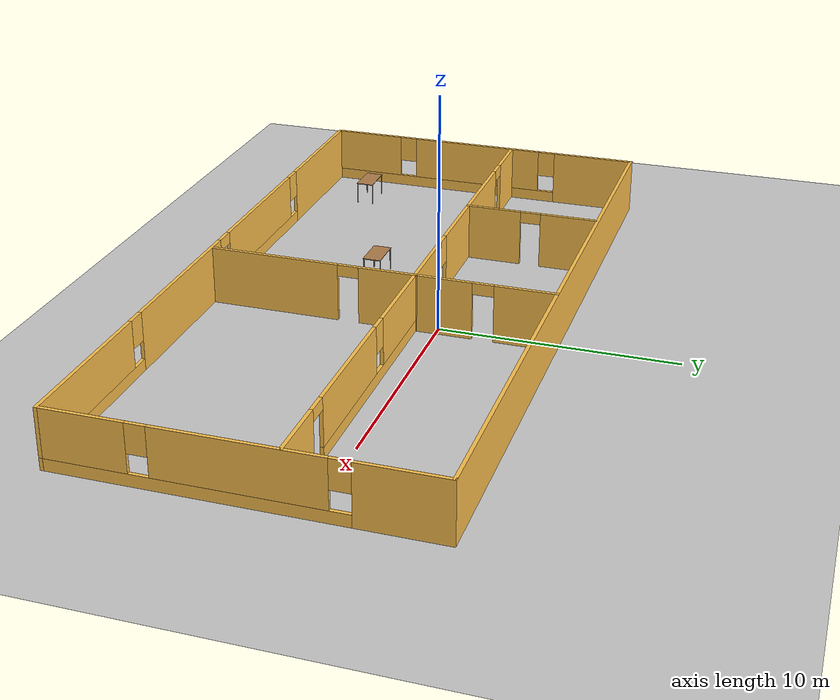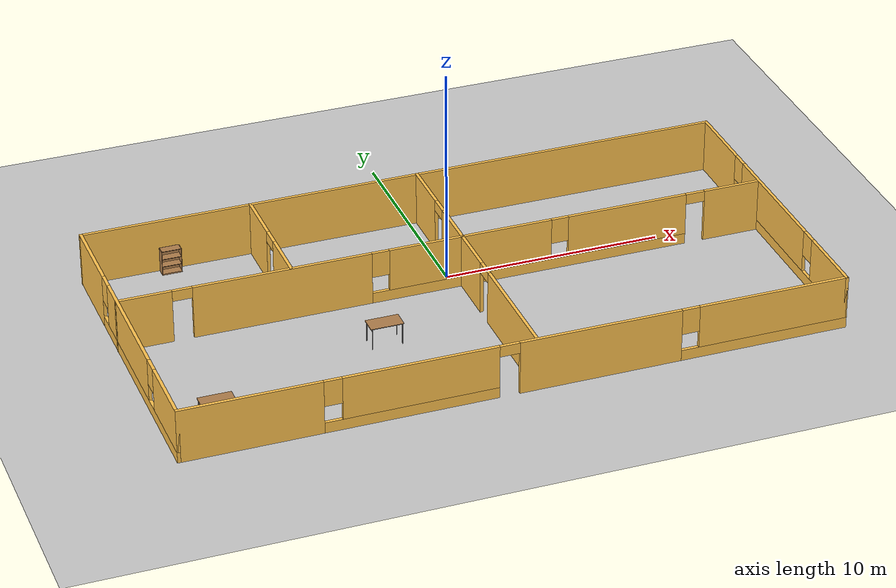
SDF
<sdf version="1.6">
 <world name="default">
  <model name="ground_plane">
   <static>1</static>
   <link name="link">
    <collision name="collision">
     <geometry><plane><normal>0 0 1</normal><size>100 100</size></plane></geometry>
     <surface><friction><ode><mu>100</mu><mu2>50</mu2></ode></friction></surface>
    </collision>
    <visual name="visual">
     <cast_shadows>0</cast_shadows>
     <geometry><plane><normal>0 0 1</normal><size>100 100</size></plane></geometry>
     <material>
      <script><uri>file://media/materials/scripts/gazebo.material</uri><name>Gazebo/Grey</name></script>
     </material>
    </visual>
   </link>
  </model>
  <model name="Building">
   <pose>-0.2996 -2.436 0 0 -0 0</pose>
   <link name="Wall_1">
    <pose>-14.92 0 0 0 0 -1.5708</pose>
    <visual name="Wall_1_Visual_0">
     <pose>-5.60194 0 1.25 0 -0 0</pose>
     <geometry><box><size>3.79611 0.15 2.5</size></box></geometry>
     <material>
      <script><uri>file://media/materials/scripts/gazebo.material</uri><name>Gazebo/Grey</name></script>
      <ambient>1 0.764706 0.305882 1</ambient>
     </material>
     <meta><layer>0</layer></meta>
    </visual>
    <collision name="Wall_1_Collision_0">
     <geometry><box><size>3.79611 0.15 2.5</size></box></geometry>
     <pose>-5.60194 0 1.25 0 -0 0</pose>
    </collision>
    <visual name="Wall_1_Visual_1">
     <pose>1.89806 0 0.25 0 -0 0</pose>
     <geometry><box><size>11.2039 0.15 0.5</size></box></geometry>
     <material>
      <script><uri>file://media/materials/scripts/gazebo.material</uri><name>Gazebo/Grey</name></script>
      <ambient>1 0.764706 0.305882 1</ambient>
     </material>
     <meta><layer>0</layer></meta>
    </visual>
    <collision name="Wall_1_Collision_1">
     <geometry><box><size>11.2039 0.15 0.5</size></box></geometry>
     <pose>1.89806 0 0.25 0 -0 0</pose>
    </collision>
    <visual name="Wall_1_Visual_2">
     <pose>0.228614 0 1.5 0 -0 0</pose>
     <geometry><box><size>6.265 0.15 2</size></box></geometry>
     <material>
      <script><uri>file://media/materials/scripts/gazebo.material</uri><name>Gazebo/Grey</name></script>
      <ambient>1 0.764706 0.305882 1</ambient>
     </material>
     <meta><layer>0</layer></meta>
    </visual>
    <collision name="Wall_1_Collision_2">
     <geometry><box><size>6.265 0.15 2</size></box></geometry>
     <pose>0.228614 0 1.5 0 -0 0</pose>
    </collision>
    <visual name="Wall_1_Visual_3">
     <pose>5.83056 0 1.5 0 -0 0</pose>
     <geometry><box><size>3.33888 0.15 2</size></box></geometry>
     <material>
      <script><uri>file://media/materials/scripts/gazebo.material</uri><name>Gazebo/Grey</name></script>
      <ambient>1 0.764706 0.305882 1</ambient>
     </material>
     <meta><layer>0</layer></meta>
    </visual>
    <collision name="Wall_1_Collision_3">
     <geometry><box><size>3.33888 0.15 2</size></box></geometry>
     <pose>5.83056 0 1.5 0 -0 0</pose>
    </collision>
    <visual name="Wall_1_Visual_4">
     <pose>-3.30389 0 1.9 0 -0 0</pose>
     <geometry><box><size>0.8 0.15 1.2</size></box></geometry>
     <material>
      <script><uri>file://media/materials/scripts/gazebo.material</uri><name>Gazebo/Grey</name></script>
      <ambient>1 0.764706 0.305882 1</ambient>
     </material>
     <meta><layer>0</layer></meta>
    </visual>
    <collision name="Wall_1_Collision_4">
     <geometry><box><size>0.8 0.15 1.2</size></box></geometry>
     <pose>-3.30389 0 1.9 0 -0 0</pose>
    </collision>
    <visual name="Wall_1_Visual_5">
     <pose>3.76112 0 1.9 0 -0 0</pose>
     <geometry><box><size>0.8 0.15 1.2</size></box></geometry>
     <material>
      <script><uri>file://media/materials/scripts/gazebo.material</uri><name>Gazebo/Grey</name></script>
      <ambient>1 0.764706 0.305882 1</ambient>
     </material>
     <meta><layer>0</layer></meta>
    </visual>
    <collision name="Wall_1_Collision_5">
     <geometry><box><size>0.8 0.15 1.2</size></box></geometry>
     <pose>3.76112 0 1.9 0 -0 0</pose>
    </collision>
   </link>
   <link name="Wall_12">
    <pose>-7.157 4.5 0 0 0 -1.5708</pose>
    <visual name="Wall_12_Visual_0">
     <pose>-1.68316 0 1.25 0 -0 0</pose>
     <geometry><box><size>2.63367 0.15 2.5</size></box></geometry>
     <material>
      <script><uri>file://media/materials/scripts/gazebo.material</uri><name>Gazebo/Grey</name></script>
      <ambient>1 0.764706 0.305882 1</ambient>
     </material>
     <meta><layer>0</layer></meta>
    </visual>
    <collision name="Wall_12_Collision_0">
     <geometry><box><size>2.63367 0.15 2.5</size></box></geometry>
     <pose>-1.68316 0 1.25 0 -0 0</pose>
    </collision>
    <visual name="Wall_12_Visual_1">
     <pose>1.76684 0 1.25 0 -0 0</pose>
     <geometry><box><size>2.46633 0.15 2.5</size></box></geometry>
     <material>
      <script><uri>file://media/materials/scripts/gazebo.material</uri><name>Gazebo/Grey</name></script>
      <ambient>1 0.764706 0.305882 1</ambient>
     </material>
     <meta><layer>0</layer></meta>
    </visual>
    <collision name="Wall_12_Collision_1">
     <geometry><box><size>2.46633 0.15 2.5</size></box></geometry>
     <pose>1.76684 0 1.25 0 -0 0</pose>
    </collision>
    <visual name="Wall_12_Visual_2">
     <pose>0.083673 0 2.25 0 -0 0</pose>
     <geometry><box><size>0.9 0.15 0.5</size></box></geometry>
     <material>
      <script><uri>file://media/materials/scripts/gazebo.material</uri><name>Gazebo/Grey</name></script>
      <ambient>1 0.764706 0.305882 1</ambient>
     </material>
     <meta><layer>0</layer></meta>
    </visual>
    <collision name="Wall_12_Collision_2">
     <geometry><box><size>0.9 0.15 0.5</size></box></geometry>
     <pose>0.083673 0 2.25 0 -0 0</pose>
    </collision>
   </link>
   <link name="Wall_14">
    <pose>0.697 4.5 0 0 0 -1.5708</pose>
    <visual name="Wall_14_Visual_0">
     <pose>-1.68316 0 1.25 0 -0 0</pose>
     <geometry><box><size>2.63367 0.15 2.5</size></box></geometry>
     <material>
      <script><uri>file://media/materials/scripts/gazebo.material</uri><name>Gazebo/Grey</name></script>
      <ambient>1 0.764706 0.305882 1</ambient>
     </material>
     <meta><layer>0</layer></meta>
    </visual>
    <collision name="Wall_14_Collision_0">
     <geometry><box><size>2.63367 0.15 2.5</size></box></geometry>
     <pose>-1.68316 0 1.25 0 -0 0</pose>
    </collision>
    <visual name="Wall_14_Visual_1">
     <pose>1.76684 0 1.25 0 -0 0</pose>
     <geometry><box><size>2.46633 0.15 2.5</size></box></geometry>
     <material>
      <script><uri>file://media/materials/scripts/gazebo.material</uri><name>Gazebo/Grey</name></script>
      <ambient>1 0.764706 0.305882 1</ambient>
     </material>
     <meta><layer>0</layer></meta>
    </visual>
    <collision name="Wall_14_Collision_1">
     <geometry><box><size>2.46633 0.15 2.5</size></box></geometry>
     <pose>1.76684 0 1.25 0 -0 0</pose>
    </collision>
    <visual name="Wall_14_Visual_2">
     <pose>0.083673 0 2.25 0 -0 0</pose>
     <geometry><box><size>0.9 0.15 0.5</size></box></geometry>
     <material>
      <script><uri>file://media/materials/scripts/gazebo.material</uri><name>Gazebo/Grey</name></script>
      <ambient>1 0.764706 0.305882 1</ambient>
     </material>
     <meta><layer>0</layer></meta>
    </visual>
    <collision name="Wall_14_Collision_2">
     <geometry><box><size>0.9 0.15 0.5</size></box></geometry>
     <pose>0.083673 0 2.25 0 -0 0</pose>
    </collision>
   </link>
   <link name="Wall_16">
    <pose>0.697 -2.85 0 0 0 -1.5708</pose>
    <visual name="Wall_16_Visual_0">
     <pose>-3.23943 0 1.25 0 -0 0</pose>
     <geometry><box><size>2.52114 0.15 2.5</size></box></geometry>
     <material>
      <script><uri>file://media/materials/scripts/gazebo.material</uri><name>Gazebo/Grey</name></script>
      <ambient>1 0.764706 0.305882 1</ambient>
     </material>
     <meta><layer>0</layer></meta>
    </visual>
    <collision name="Wall_16_Collision_0">
     <geometry><box><size>2.52114 0.15 2.5</size></box></geometry>
     <pose>-3.23943 0 1.25 0 -0 0</pose>
    </collision>
    <visual name="Wall_16_Visual_1">
     <pose>1.71057 0 1.25 0 -0 0</pose>
     <geometry><box><size>5.57886 0.15 2.5</size></box></geometry>
     <material>
      <script><uri>file://media/materials/scripts/gazebo.material</uri><name>Gazebo/Grey</name></script>
      <ambient>1 0.764706 0.305882 1</ambient>
     </material>
     <meta><layer>0</layer></meta>
    </visual>
    <collision name="Wall_16_Collision_1">
     <geometry><box><size>5.57886 0.15 2.5</size></box></geometry>
     <pose>1.71057 0 1.25 0 -0 0</pose>
    </collision>
    <visual name="Wall_16_Visual_2">
     <pose>-1.52886 0 2.25 0 -0 0</pose>
     <geometry><box><size>0.9 0.15 0.5</size></box></geometry>
     <material>
      <script><uri>file://media/materials/scripts/gazebo.material</uri><name>Gazebo/Grey</name></script>
      <ambient>1 0.764706 0.305882 1</ambient>
     </material>
     <meta><layer>0</layer></meta>
    </visual>
    <collision name="Wall_16_Collision_2">
     <geometry><box><size>0.9 0.15 0.5</size></box></geometry>
     <pose>-1.52886 0 2.25 0 -0 0</pose>
    </collision>
   </link>
   <link name="Wall_4">
    <pose>0.005 -7.425 0 0 -0 0</pose>
    <visual name="Wall_4_Visual_0">
     <pose>-11.8455 0 1.25 0 -0 0</pose>
     <geometry><box><size>6.30901 0.15 2.5</size></box></geometry>
     <material>
      <script><uri>file://media/materials/scripts/gazebo.material</uri><name>Gazebo/Grey</name></script>
      <ambient>1 0.764706 0.305882 1</ambient>
     </material>
     <meta><layer>0</layer></meta>
    </visual>
    <collision name="Wall_4_Collision_0">
     <geometry><box><size>6.30901 0.15 2.5</size></box></geometry>
     <pose>-11.8455 0 1.25 0 -0 0</pose>
    </collision>
    <visual name="Wall_4_Visual_1">
     <pose>3.58082 0 1.25 0 -0 0</pose>
     <geometry><box><size>7.34783 0.15 2.5</size></box></geometry>
     <material>
      <script><uri>file://media/materials/scripts/gazebo.material</uri><name>Gazebo/Grey</name></script>
      <ambient>1 0.764706 0.305882 1</ambient>
     </material>
     <meta><layer>0</layer></meta>
    </visual>
    <collision name="Wall_4_Collision_1">
     <geometry><box><size>7.34783 0.15 2.5</size></box></geometry>
     <pose>3.58082 0 1.25 0 -0 0</pose>
    </collision>
    <visual name="Wall_4_Visual_2">
     <pose>-4.84204 0 0.25 0 -0 0</pose>
     <geometry><box><size>7.6979 0.15 0.5</size></box></geometry>
     <material>
      <script><uri>file://media/materials/scripts/gazebo.material</uri><name>Gazebo/Grey</name></script>
      <ambient>1 0.764706 0.305882 1</ambient>
     </material>
     <meta><layer>0</layer></meta>
    </visual>
    <collision name="Wall_4_Collision_2">
     <geometry><box><size>7.6979 0.15 0.5</size></box></geometry>
     <pose>-4.84204 0 0.25 0 -0 0</pose>
    </collision>
    <visual name="Wall_4_Visual_3">
     <pose>11.1274 0 0.25 0 -0 0</pose>
     <geometry><box><size>7.74526 0.15 0.5</size></box></geometry>
     <material>
      <script><uri>file://media/materials/scripts/gazebo.material</uri><name>Gazebo/Grey</name></script>
      <ambient>1 0.764706 0.305882 1</ambient>
     </material>
     <meta><layer>0</layer></meta>
    </visual>
    <collision name="Wall_4_Collision_3">
     <geometry><box><size>7.74526 0.15 0.5</size></box></geometry>
     <pose>11.1274 0 0.25 0 -0 0</pose>
    </collision>
    <visual name="Wall_4_Visual_4">
     <pose>-4.44204 0 1.5 0 -0 0</pose>
     <geometry><box><size>6.8979 0.15 2</size></box></geometry>
     <material>
      <script><uri>file://media/materials/scripts/gazebo.material</uri><name>Gazebo/Grey</name></script>
      <ambient>1 0.764706 0.305882 1</ambient>
     </material>
     <meta><layer>0</layer></meta>
    </visual>
    <collision name="Wall_4_Collision_4">
     <geometry><box><size>6.8979 0.15 2</size></box></geometry>
     <pose>-4.44204 0 1.5 0 -0 0</pose>
    </collision>
    <visual name="Wall_4_Visual_5">
     <pose>-4.44204 0 1.5 0 -0 0</pose>
     <geometry><box><size>6.8979 0.15 2</size></box></geometry>
     <material>
      <script><uri>file://media/materials/scripts/gazebo.material</uri><name>Gazebo/Grey</name></script>
      <ambient>1 0.764706 0.305882 1</ambient>
     </material>
     <meta><layer>0</layer></meta>
    </visual>
    <collision name="Wall_4_Collision_5">
     <geometry><box><size>6.8979 0.15 2</size></box></geometry>
     <pose>-4.44204 0 1.5 0 -0 0</pose>
    </collision>
    <visual name="Wall_4_Visual_6">
     <pose>11.5274 0 1.5 0 -0 0</pose>
     <geometry><box><size>6.94526 0.15 2</size></box></geometry>
     <material>
      <script><uri>file://media/materials/scripts/gazebo.material</uri><name>Gazebo/Grey</name></script>
      <ambient>1 0.764706 0.305882 1</ambient>
     </material>
     <meta><layer>0</layer></meta>
    </visual>
    <collision name="Wall_4_Collision_6">
     <geometry><box><size>6.94526 0.15 2</size></box></geometry>
     <pose>11.5274 0 1.5 0 -0 0</pose>
    </collision>
    <visual name="Wall_4_Visual_7">
     <pose>-8.29099 0 1.9 0 -0 0</pose>
     <geometry><box><size>0.8 0.15 1.2</size></box></geometry>
     <material>
      <script><uri>file://media/materials/scripts/gazebo.material</uri><name>Gazebo/Grey</name></script>
      <ambient>1 0.764706 0.305882 1</ambient>
     </material>
     <meta><layer>0</layer></meta>
    </visual>
    <collision name="Wall_4_Collision_7">
     <geometry><box><size>0.8 0.15 1.2</size></box></geometry>
     <pose>-8.29099 0 1.9 0 -0 0</pose>
    </collision>
    <visual name="Wall_4_Visual_8">
     <pose>7.65474 0 1.9 0 -0 0</pose>
     <geometry><box><size>0.8 0.15 1.2</size></box></geometry>
     <material>
      <script><uri>file://media/materials/scripts/gazebo.material</uri><name>Gazebo/Grey</name></script>
      <ambient>1 0.764706 0.305882 1</ambient>
     </material>
     <meta><layer>0</layer></meta>
    </visual>
    <collision name="Wall_4_Collision_8">
     <geometry><box><size>0.8 0.15 1.2</size></box></geometry>
     <pose>7.65474 0 1.9 0 -0 0</pose>
    </collision>
    <visual name="Wall_4_Visual_9">
     <pose>-0.543092 0 2.25 0 -0 0</pose>
     <geometry><box><size>0.9 0.15 0.5</size></box></geometry>
     <material>
      <script><uri>file://media/materials/scripts/gazebo.material</uri><name>Gazebo/Grey</name></script>
      <ambient>1 0.764706 0.305882 1</ambient>
     </material>
     <meta><layer>0</layer></meta>
    </visual>
    <collision name="Wall_4_Collision_9">
     <geometry><box><size>0.9 0.15 0.5</size></box></geometry>
     <pose>-0.543092 0 2.25 0 -0 0</pose>
    </collision>
    <visual name="Wall_4_Visual_10">
     <pose>-0.543092 0 2.25 0 -0 0</pose>
     <geometry><box><size>0.9 0.15 0.5</size></box></geometry>
     <material>
      <script><uri>file://media/materials/scripts/gazebo.material</uri><name>Gazebo/Grey</name></script>
      <ambient>1 0.764706 0.305882 1</ambient>
     </material>
     <meta><layer>0</layer></meta>
    </visual>
    <collision name="Wall_4_Collision_10">
     <geometry><box><size>0.9 0.15 0.5</size></box></geometry>
     <pose>-0.543092 0 2.25 0 -0 0</pose>
    </collision>
   </link>
   <link name="Wall_6">
    <collision name="Wall_6_Collision">
     <geometry><box><size>30 0.15 2.5</size></box></geometry>
     <pose>0 0 1.25 0 -0 0</pose>
    </collision>
    <visual name="Wall_6_Visual">
     <pose>0 0 1.25 0 -0 0</pose>
     <geometry><box><size>30 0.15 2.5</size></box></geometry>
     <material>
      <script><uri>file://media/materials/scripts/gazebo.material</uri><name>Gazebo/Grey</name></script>
      <ambient>1 0.764706 0.305882 1</ambient>
     </material>
     <meta><layer>0</layer></meta>
    </visual>
    <pose>0.005 7.425 0 0 -0 0</pose>
   </link>
   <link name="Wall_7">
    <pose>14.93 0 0 0 0 -1.5708</pose>
    <visual name="Wall_7_Visual_0">
     <pose>-5.74231 0 1.25 0 -0 0</pose>
     <geometry><box><size>3.51538 0.15 2.5</size></box></geometry>
     <material>
      <script><uri>file://media/materials/scripts/gazebo.material</uri><name>Gazebo/Grey</name></script>
      <ambient>1 0.764706 0.305882 1</ambient>
     </material>
     <meta><layer>0</layer></meta>
    </visual>
    <collision name="Wall_7_Collision_0">
     <geometry><box><size>3.51538 0.15 2.5</size></box></geometry>
     <pose>-5.74231 0 1.25 0 -0 0</pose>
    </collision>
    <visual name="Wall_7_Visual_1">
     <pose>1.75769 0 0.25 0 -0 0</pose>
     <geometry><box><size>11.4846 0.15 0.5</size></box></geometry>
     <material>
      <script><uri>file://media/materials/scripts/gazebo.material</uri><name>Gazebo/Grey</name></script>
      <ambient>1 0.764706 0.305882 1</ambient>
     </material>
     <meta><layer>0</layer></meta>
    </visual>
    <collision name="Wall_7_Collision_1">
     <geometry><box><size>11.4846 0.15 0.5</size></box></geometry>
     <pose>1.75769 0 0.25 0 -0 0</pose>
    </collision>
    <visual name="Wall_7_Visual_2">
     <pose>0.055868 0 1.5 0 -0 0</pose>
     <geometry><box><size>6.48097 0.15 2</size></box></geometry>
     <material>
      <script><uri>file://media/materials/scripts/gazebo.material</uri><name>Gazebo/Grey</name></script>
      <ambient>1 0.764706 0.305882 1</ambient>
     </material>
     <meta><layer>0</layer></meta>
    </visual>
    <collision name="Wall_7_Collision_2">
     <geometry><box><size>6.48097 0.15 2</size></box></geometry>
     <pose>0.055868 0 1.5 0 -0 0</pose>
    </collision>
    <visual name="Wall_7_Visual_3">
     <pose>5.79818 0 1.5 0 -0 0</pose>
     <geometry><box><size>3.40365 0.15 2</size></box></geometry>
     <material>
      <script><uri>file://media/materials/scripts/gazebo.material</uri><name>Gazebo/Grey</name></script>
      <ambient>1 0.764706 0.305882 1</ambient>
     </material>
     <meta><layer>0</layer></meta>
    </visual>
    <collision name="Wall_7_Collision_3">
     <geometry><box><size>3.40365 0.15 2</size></box></geometry>
     <pose>5.79818 0 1.5 0 -0 0</pose>
    </collision>
    <visual name="Wall_7_Visual_4">
     <pose>-3.58462 0 1.9 0 -0 0</pose>
     <geometry><box><size>0.8 0.15 1.2</size></box></geometry>
     <material>
      <script><uri>file://media/materials/scripts/gazebo.material</uri><name>Gazebo/Grey</name></script>
      <ambient>1 0.764706 0.305882 1</ambient>
     </material>
     <meta><layer>0</layer></meta>
    </visual>
    <collision name="Wall_7_Collision_4">
     <geometry><box><size>0.8 0.15 1.2</size></box></geometry>
     <pose>-3.58462 0 1.9 0 -0 0</pose>
    </collision>
    <visual name="Wall_7_Visual_5">
     <pose>3.69635 0 1.9 0 -0 0</pose>
     <geometry><box><size>0.8 0.15 1.2</size></box></geometry>
     <material>
      <script><uri>file://media/materials/scripts/gazebo.material</uri><name>Gazebo/Grey</name></script>
      <ambient>1 0.764706 0.305882 1</ambient>
     </material>
     <meta><layer>0</layer></meta>
    </visual>
    <collision name="Wall_7_Collision_5">
     <geometry><box><size>0.8 0.15 1.2</size></box></geometry>
     <pose>3.69635 0 1.9 0 -0 0</pose>
    </collision>
   </link>
   <link name="Wall_9">
    <pose>-0.005 1.542 0 0 -0 0</pose>
    <visual name="Wall_9_Visual_0">
     <pose>-13.7533 0 1.25 0 -0 0</pose>
     <geometry><box><size>2.49331 0.15 2.5</size></box></geometry>
     <material>
      <script><uri>file://media/materials/scripts/gazebo.material</uri><name>Gazebo/Grey</name></script>
      <ambient>1 0.764706 0.305882 1</ambient>
     </material>
     <meta><layer>0</layer></meta>
    </visual>
    <collision name="Wall_9_Collision_0">
     <geometry><box><size>2.49331 0.15 2.5</size></box></geometry>
     <pose>-13.7533 0 1.25 0 -0 0</pose>
    </collision>
    <visual name="Wall_9_Visual_1">
     <pose>-7.55232 0 1.25 0 -0 0</pose>
     <geometry><box><size>8.10873 0.15 2.5</size></box></geometry>
     <material>
      <script><uri>file://media/materials/scripts/gazebo.material</uri><name>Gazebo/Grey</name></script>
      <ambient>1 0.764706 0.305882 1</ambient>
     </material>
     <meta><layer>0</layer></meta>
    </visual>
    <collision name="Wall_9_Collision_1">
     <geometry><box><size>8.10873 0.15 2.5</size></box></geometry>
     <pose>-7.55232 0 1.25 0 -0 0</pose>
    </collision>
    <visual name="Wall_9_Visual_2">
     <pose>13.6177 0 1.25 0 -0 0</pose>
     <geometry><box><size>2.76464 0.15 2.5</size></box></geometry>
     <material>
      <script><uri>file://media/materials/scripts/gazebo.material</uri><name>Gazebo/Grey</name></script>
      <ambient>1 0.764706 0.305882 1</ambient>
     </material>
     <meta><layer>0</layer></meta>
    </visual>
    <collision name="Wall_9_Collision_2">
     <geometry><box><size>2.76464 0.15 2.5</size></box></geometry>
     <pose>13.6177 0 1.25 0 -0 0</pose>
    </collision>
    <visual name="Wall_9_Visual_3">
     <pose>3.9187 0 0.25 0 -0 0</pose>
     <geometry><box><size>14.8333 0.15 0.5</size></box></geometry>
     <material>
      <script><uri>file://media/materials/scripts/gazebo.material</uri><name>Gazebo/Grey</name></script>
      <ambient>1 0.764706 0.305882 1</ambient>
     </material>
     <meta><layer>0</layer></meta>
    </visual>
    <collision name="Wall_9_Collision_3">
     <geometry><box><size>14.8333 0.15 0.5</size></box></geometry>
     <pose>3.9187 0 0.25 0 -0 0</pose>
    </collision>
    <visual name="Wall_9_Visual_4">
     <pose>1.08957 0 1.5 0 -0 0</pose>
     <geometry><box><size>7.57507 0.15 2</size></box></geometry>
     <material>
      <script><uri>file://media/materials/scripts/gazebo.material</uri><name>Gazebo/Grey</name></script>
      <ambient>1 0.764706 0.305882 1</ambient>
     </material>
     <meta><layer>0</layer></meta>
    </visual>
    <collision name="Wall_9_Collision_4">
     <geometry><box><size>7.57507 0.15 2</size></box></geometry>
     <pose>1.08957 0 1.5 0 -0 0</pose>
    </collision>
    <visual name="Wall_9_Visual_5">
     <pose>8.50624 0 1.5 0 -0 0</pose>
     <geometry><box><size>5.65825 0.15 2</size></box></geometry>
     <material>
      <script><uri>file://media/materials/scripts/gazebo.material</uri><name>Gazebo/Grey</name></script>
      <ambient>1 0.764706 0.305882 1</ambient>
     </material>
     <meta><layer>0</layer></meta>
    </visual>
    <collision name="Wall_9_Collision_5">
     <geometry><box><size>5.65825 0.15 2</size></box></geometry>
     <pose>8.50624 0 1.5 0 -0 0</pose>
    </collision>
    <visual name="Wall_9_Visual_6">
     <pose>-3.09796 0 1.9 0 -0 0</pose>
     <geometry><box><size>0.8 0.15 1.2</size></box></geometry>
     <material>
      <script><uri>file://media/materials/scripts/gazebo.material</uri><name>Gazebo/Grey</name></script>
      <ambient>1 0.764706 0.305882 1</ambient>
     </material>
     <meta><layer>0</layer></meta>
    </visual>
    <collision name="Wall_9_Collision_6">
     <geometry><box><size>0.8 0.15 1.2</size></box></geometry>
     <pose>-3.09796 0 1.9 0 -0 0</pose>
    </collision>
    <visual name="Wall_9_Visual_7">
     <pose>5.27711 0 1.9 0 -0 0</pose>
     <geometry><box><size>0.8 0.15 1.2</size></box></geometry>
     <material>
      <script><uri>file://media/materials/scripts/gazebo.material</uri><name>Gazebo/Grey</name></script>
      <ambient>1 0.764706 0.305882 1</ambient>
     </material>
     <meta><layer>0</layer></meta>
    </visual>
    <collision name="Wall_9_Collision_7">
     <geometry><box><size>0.8 0.15 1.2</size></box></geometry>
     <pose>5.27711 0 1.9 0 -0 0</pose>
    </collision>
    <visual name="Wall_9_Visual_8">
     <pose>-12.0567 0 2.25 0 -0 0</pose>
     <geometry><box><size>0.9 0.15 0.5</size></box></geometry>
     <material>
      <script><uri>file://media/materials/scripts/gazebo.material</uri><name>Gazebo/Grey</name></script>
      <ambient>1 0.764706 0.305882 1</ambient>
     </material>
     <meta><layer>0</layer></meta>
    </visual>
    <collision name="Wall_9_Collision_8">
     <geometry><box><size>0.9 0.15 0.5</size></box></geometry>
     <pose>-12.0567 0 2.25 0 -0 0</pose>
    </collision>
    <visual name="Wall_9_Visual_9">
     <pose>11.7854 0 2.25 0 -0 0</pose>
     <geometry><box><size>0.9 0.15 0.5</size></box></geometry>
     <material>
      <script><uri>file://media/materials/scripts/gazebo.material</uri><name>Gazebo/Grey</name></script>
      <ambient>1 0.764706 0.305882 1</ambient>
     </material>
     <meta><layer>0</layer></meta>
    </visual>
    <collision name="Wall_9_Collision_9">
     <geometry><box><size>0.9 0.15 0.5</size></box></geometry>
     <pose>11.7854 0 2.25 0 -0 0</pose>
    </collision>
   </link>
   <static>1</static>
  </model>
  <model name="table">
   <static>1</static>
   <link name="link">
    <collision name="surface">
     <pose>0 0 1 0 -0 0</pose>
     <geometry><box><size>1.5 0.8 0.03</size></box></geometry>
     <surface><friction><ode><mu>0.6</mu><mu2>0.6</mu2></ode></friction></surface>
    </collision>
    <visual name="visual1">
     <pose>0 0 1 0 -0 0</pose>
     <geometry><box><size>1.5 0.8 0.03</size></box></geometry>
     <material>
      <script><uri>file://media/materials/scripts/gazebo.material</uri><name>Gazebo/Wood</name></script>
     </material>
    </visual>
    <collision name="front_left_leg">
     <pose>0.68 0.38 0.5 0 -0 0</pose>
     <geometry><cylinder><radius>0.02</radius><length>1</length></cylinder></geometry>
    </collision>
    <visual name="front_left_leg">
     <pose>0.68 0.38 0.5 0 -0 0</pose>
     <geometry><cylinder><radius>0.02</radius><length>1</length></cylinder></geometry>
     <material>
      <script><uri>file://media/materials/scripts/gazebo.material</uri><name>Gazebo/Grey</name></script>
     </material>
    </visual>
    <collision name="front_right_leg">
     <pose>0.68 -0.38 0.5 0 -0 0</pose>
     <geometry><cylinder><radius>0.02</radius><length>1</length></cylinder></geometry>
    </collision>
    <visual name="front_right_leg">
     <pose>0.68 -0.38 0.5 0 -0 0</pose>
     <geometry><cylinder><radius>0.02</radius><length>1</length></cylinder></geometry>
     <material>
      <script><uri>file://media/materials/scripts/gazebo.material</uri><name>Gazebo/Grey</name></script>
     </material>
    </visual>
    <collision name="back_right_leg">
     <pose>-0.68 -0.38 0.5 0 -0 0</pose>
     <geometry><cylinder><radius>0.02</radius><length>1</length></cylinder></geometry>
    </collision>
    <visual name="back_right_leg">
     <pose>-0.68 -0.38 0.5 0 -0 0</pose>
     <geometry><cylinder><radius>0.02</radius><length>1</length></cylinder></geometry>
     <material>
      <script><uri>file://media/materials/scripts/gazebo.material</uri><name>Gazebo/Grey</name></script>
     </material>
    </visual>
    <collision name="back_left_leg">
     <pose>-0.68 0.38 0.5 0 -0 0</pose>
     <geometry><cylinder><radius>0.02</radius><length>1</length></cylinder></geometry>
    </collision>
    <visual name="back_left_leg">
     <pose>-0.68 0.38 0.5 0 -0 0</pose>
     <geometry><cylinder><radius>0.02</radius><length>1</length></cylinder></geometry>
     <material>
      <script><uri>file://media/materials/scripts/gazebo.material</uri><name>Gazebo/Grey</name></script>
     </material>
    </visual>
   </link>
   <pose>-12.8404 -7.46561 0 0 -0 0</pose>
  </model>
  <model name="table_3">
   <static>1</static>
   <link name="link">
    <collision name="surface">
     <pose>0 0 1 0 -0 0</pose>
     <geometry><box><size>1.5 0.8 0.03</size></box></geometry>
     <surface><friction><ode><mu>0.6</mu><mu2>0.6</mu2></ode></friction></surface>
    </collision>
    <visual name="visual1">
     <pose>0 0 1 0 -0 0</pose>
     <geometry><box><size>1.5 0.8 0.03</size></box></geometry>
     <material>
      <script><uri>file://media/materials/scripts/gazebo.material</uri><name>Gazebo/Wood</name></script>
     </material>
    </visual>
    <collision name="front_left_leg">
     <pose>0.68 0.38 0.5 0 -0 0</pose>
     <geometry><cylinder><radius>0.02</radius><length>1</length></cylinder></geometry>
    </collision>
    <visual name="front_left_leg">
     <pose>0.68 0.38 0.5 0 -0 0</pose>
     <geometry><cylinder><radius>0.02</radius><length>1</length></cylinder></geometry>
     <material>
      <script><uri>file://media/materials/scripts/gazebo.material</uri><name>Gazebo/Grey</name></script>
     </material>
    </visual>
    <collision name="front_right_leg">
     <pose>0.68 -0.38 0.5 0 -0 0</pose>
     <geometry><cylinder><radius>0.02</radius><length>1</length></cylinder></geometry>
    </collision>
    <visual name="front_right_leg">
     <pose>0.68 -0.38 0.5 0 -0 0</pose>
     <geometry><cylinder><radius>0.02</radius><length>1</length></cylinder></geometry>
     <material>
      <script><uri>file://media/materials/scripts/gazebo.material</uri><name>Gazebo/Grey</name></script>
     </material>
    </visual>
    <collision name="back_right_leg">
     <pose>-0.68 -0.38 0.5 0 -0 0</pose>
     <geometry><cylinder><radius>0.02</radius><length>1</length></cylinder></geometry>
    </collision>
    <visual name="back_right_leg">
     <pose>-0.68 -0.38 0.5 0 -0 0</pose>
     <geometry><cylinder><radius>0.02</radius><length>1</length></cylinder></geometry>
     <material>
      <script><uri>file://media/materials/scripts/gazebo.material</uri><name>Gazebo/Grey</name></script>
     </material>
    </visual>
    <collision name="back_left_leg">
     <pose>-0.68 0.38 0.5 0 -0 0</pose>
     <geometry><cylinder><radius>0.02</radius><length>1</length></cylinder></geometry>
    </collision>
    <visual name="back_left_leg">
     <pose>-0.68 0.38 0.5 0 -0 0</pose>
     <geometry><cylinder><radius>0.02</radius><length>1</length></cylinder></geometry>
     <material>
      <script><uri>file://media/materials/scripts/gazebo.material</uri><name>Gazebo/Grey</name></script>
     </material>
    </visual>
   </link>
   <pose>-4.365 -4.15692 0 0 -0 0</pose>
  </model>
  <model name="bookshelf_0">
   <static>1</static>
   <link name="link">
    <inertial><mass>1</mass></inertial>
    <collision name="back">
     <pose>0 0.005 0.6 0 -0 0</pose>
     <geometry><box><size>0.9 0.01 1.2</size></box></geometry>
    </collision>
    <visual name="visual1">
     <pose>0 0.005 0.6 0 -0 0</pose>
     <geometry><box><size>0.9 0.01 1.2</size></box></geometry>
     <material>
      <script><uri>file://media/materials/scripts/gazebo.material</uri><name>Gazebo/Wood</name></script>
     </material>
    </visual>
    <collision name="left_side">
     <pose>0.45 -0.195 0.6 0 -0 0</pose>
     <geometry><box><size>0.02 0.4 1.2</size></box></geometry>
    </collision>
    <visual name="visual2">
     <pose>0.45 -0.195 0.6 0 -0 0</pose>
     <geometry><box><size>0.02 0.4 1.2</size></box></geometry>
     <material>
      <script><uri>file://media/materials/scripts/gazebo.material</uri><name>Gazebo/Wood</name></script>
     </material>
    </visual>
    <collision name="right_side">
     <pose>-0.45 -0.195 0.6 0 -0 0</pose>
     <geometry><box><size>0.02 0.4 1.2</size></box></geometry>
    </collision>
    <visual name="visual3">
     <pose>-0.45 -0.195 0.6 0 -0 0</pose>
     <geometry><box><size>0.02 0.4 1.2</size></box></geometry>
     <material>
      <script><uri>file://media/materials/scripts/gazebo.material</uri><name>Gazebo/Wood</name></script>
     </material>
    </visual>
    <collision name="bottom">
     <pose>0 -0.195 0.03 0 -0 0</pose>
     <geometry><box><size>0.88 0.4 0.06</size></box></geometry>
    </collision>
    <visual name="visual4">
     <pose>0 -0.195 0.03 0 -0 0</pose>
     <geometry><box><size>0.88 0.4 0.06</size></box></geometry>
     <material>
      <script><uri>file://media/materials/scripts/gazebo.material</uri><name>Gazebo/Wood</name></script>
     </material>
    </visual>
    <collision name="top">
     <pose>0 -0.195 1.19 0 -0 0</pose>
     <geometry><box><size>0.88 0.4 0.02</size></box></geometry>
    </collision>
    <visual name="visual5">
     <pose>0 -0.195 1.19 0 -0 0</pose>
     <geometry><box><size>0.88 0.4 0.02</size></box></geometry>
     <material>
      <script><uri>file://media/materials/scripts/gazebo.material</uri><name>Gazebo/Wood</name></script>
     </material>
    </visual>
    <collision name="low_shelf">
     <pose>0 -0.195 0.43 0 -0 0</pose>
     <geometry><box><size>0.88 0.4 0.02</size></box></geometry>
    </collision>
    <visual name="visual6">
     <pose>0 -0.195 0.43 0 -0 0</pose>
     <geometry><box><size>0.88 0.4 0.02</size></box></geometry>
     <material>
      <script><uri>file://media/materials/scripts/gazebo.material</uri><name>Gazebo/Wood</name></script>
     </material>
    </visual>
    <collision name="high_shelf">
     <pose>0 -0.195 0.8 0 -0 0</pose>
     <geometry><box><size>0.88 0.4 0.02</size></box></geometry>
    </collision>
    <visual name="visual7">
     <pose>0 -0.195 0.8 0 -0 0</pose>
     <geometry><box><size>0.88 0.4 0.02</size></box></geometry>
     <material>
      <script><uri>file://media/materials/scripts/gazebo.material</uri><name>Gazebo/Wood</name></script>
     </material>
    </visual>
   </link>
   <pose>-11.3136 4.86135 0 0 -0 0</pose>
  </model>
 </world>
</sdf>
